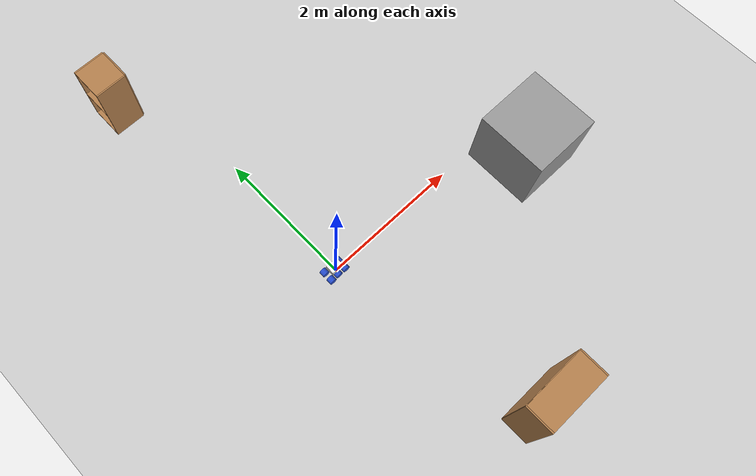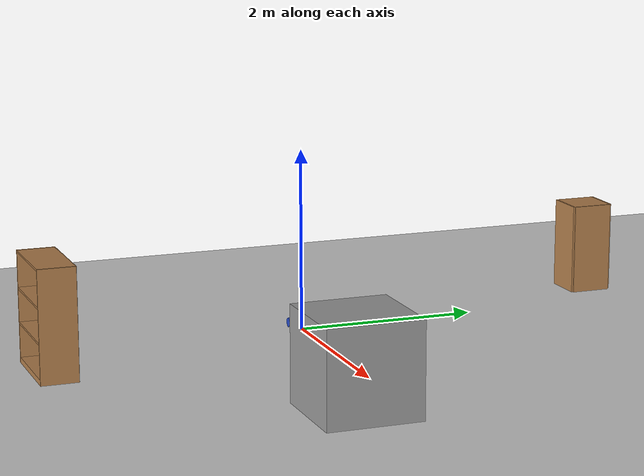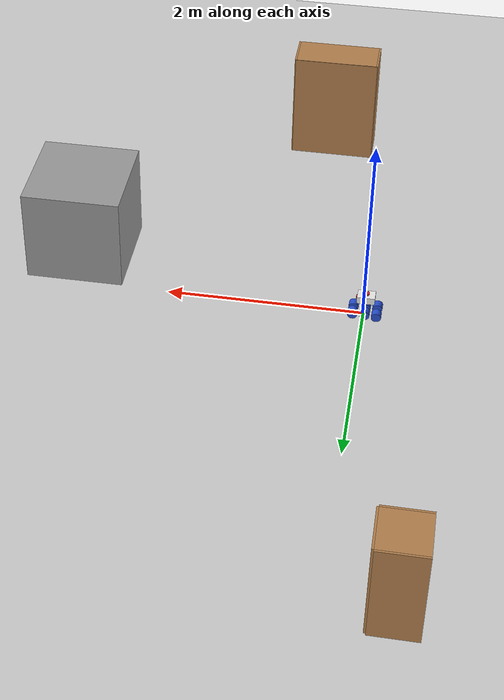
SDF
<sdf version="1.7">
 <world name="default">
  <light name="sun" type="directional">
   <pose>0 0 10 0 -0 0</pose>
   <diffuse>0.8 0.8 0.8 1</diffuse>
   <specular>0.2 0.2 0.2 1</specular>
   <attenuation>
    <range>1000</range>
    <constant>0.9</constant>
    <linear>0.01</linear>
    <quadratic>0.001</quadratic>
   </attenuation>
   <direction>-0.5 0.1 -0.9</direction>
   <spot><inner_angle>0</inner_angle><outer_angle>0</outer_angle><falloff>0</falloff></spot>
  </light>
  <model name="ground_plane">
   <static>1</static>
   <link name="link">
    <collision name="collision">
     <geometry><plane><normal>0 0 1</normal><size>100 100</size></plane></geometry>
     <surface>
      <contact><collide_bitmask>65535</collide_bitmask></contact>
      <friction><ode><mu>100</mu><mu2>50</mu2></ode></friction>
     </surface>
    </collision>
    <visual name="visual">
     <cast_shadows>0</cast_shadows>
     <geometry><plane><normal>0 0 1</normal><size>100 100</size></plane></geometry>
     <material>
      <script><uri>file://media/materials/scripts/gazebo.material</uri><name>Gazebo/Grey</name></script>
     </material>
    </visual>
   </link>
  </model>
  <gravity>0 0 -9.8</gravity>
  <magnetic_field>6e-06 2.3e-05 -4.2e-05</magnetic_field>
  <atmosphere type="adiabatic"/>
  <physics type="ode">
   <max_step_size>0.001</max_step_size>
   <real_time_factor>1</real_time_factor>
   <real_time_update_rate>1000</real_time_update_rate>
  </physics>
  <scene><ambient>0.4 0.4 0.4 1</ambient><background>0.7 0.7 0.7 1</background><shadows>1</shadows></scene>
  <audio><device>default</device></audio>
  <spherical_coordinates>
   <surface_model>EARTH_WGS84</surface_model>
   <latitude_deg>0</latitude_deg>
   <longitude_deg>0</longitude_deg>
   <elevation>0</elevation>
   <heading_deg>0</heading_deg>
  </spherical_coordinates>
  <model name="my_bot">
   <link name="base_link">
    <inertial>
     <pose>0 0 0.042985 0 -0 0</pose>
     <mass>0.78</mass>
     <inertia>
      <ixx>0.00139852</ixx>
      <ixy>0</ixy>
      <ixz>0</ixz>
      <iyy>0.00227997</iyy>
      <iyz>0</iyz>
      <izz>0.00274065</izz>
     </inertia>
    </inertial>
    <collision name="base_link_fixed_joint_lump__chassis_collision">
     <pose>0 0 0.0381 0 -0 0</pose>
     <geometry><box><size>0.178 0.127 0.0762</size></box></geometry>
    </collision>
    <collision name="base_link_fixed_joint_lump__laser_frame_collision_1">
     <pose>0 0 0.0762 0 -0 0</pose>
     <geometry><cylinder><length>0.04</length><radius>0.025</radius></cylinder></geometry>
    </collision>
    <visual name="base_link_fixed_joint_lump__chassis_visual">
     <pose>0 0 0.0381 0 -0 0</pose>
     <geometry><box><size>0.178 0.127 0.0762</size></box></geometry>
     <material>
      <script><name>Gazebo/White</name><uri>file://media/materials/scripts/gazebo.material</uri></script>
     </material>
    </visual>
    <visual name="base_link_fixed_joint_lump__camera_link_visual_1">
     <pose>0.095 0 0.035 0 -0 0</pose>
     <geometry><box><size>0.01 0.03 0.03</size></box></geometry>
     <material>
      <script><name>Gazebo/Red</name><uri>file://media/materials/scripts/gazebo.material</uri></script>
     </material>
    </visual>
    <visual name="base_link_fixed_joint_lump__laser_frame_visual_2">
     <pose>0 0 0.0762 0 -0 0</pose>
     <geometry><cylinder><length>0.04</length><radius>0.03</radius></cylinder></geometry>
     <material>
      <script><name>Gazebo/Red</name><uri>file://media/materials/scripts/gazebo.material</uri></script>
     </material>
    </visual>
    <sensor name="camera" type="camera">
     <visualize>1</visualize>
     <update_rate>10</update_rate>
     <camera>
      <horizontal_fov>1.74533</horizontal_fov>
      <image><format>R8G8B8</format><width>1920</width><height>1080</height></image>
      <clip><near>0.05</near><far>10</far></clip>
     </camera>
     <plugin name="camera_controller" filename="libgazebo_ros_camera.so">
      <frame_name>camera_link_optical</frame_name>
     </plugin>
     <pose>0.095 0 0.035 0 -0 0</pose>
    </sensor>
    <sensor name="laser" type="ray">
     <visualize>0</visualize>
     <update_rate>10</update_rate>
     <ray>
      <scan>
       <horizontal>
        <samples>360</samples>
        <min_angle>-3.14</min_angle>
        <max_angle>3.14</max_angle>
        <resolution>1</resolution>
       </horizontal>
       <vertical><samples>1</samples><min_angle>0</min_angle><max_angle>0</max_angle></vertical>
      </scan>
      <range><min>0.3</min><max>12</max></range>
     </ray>
     <plugin name="laser_controller" filename="libgazebo_ros_ray_sensor.so">
      <ros><argument>~/out:=scan</argument></ros>
      <output_type>sensor_msgs/LaserScan</output_type>
      <frame_name>laser_frame</frame_name>
     </plugin>
     <pose>0 0 0.0762 0 -0 0</pose>
    </sensor>
   </link>
   <joint name="left_back_wheel_joint" type="revolute">
    <pose relative_to="base_link">-0.118 0.03 -0.125 -1.5708 0 0</pose>
    <parent>base_link</parent>
    <child>left_back_wheel</child>
    <axis>
     <xyz>0 0 1</xyz>
     <limit><lower>-1e+16</lower><upper>1e+16</upper></limit>
     <dynamics><spring_reference>0</spring_reference><spring_stiffness>0</spring_stiffness></dynamics>
    </axis>
   </joint>
   <link name="left_back_wheel">
    <pose relative_to="left_back_wheel_joint">0 0 0 0 -0 0</pose>
    <inertial>
     <mass>0.1</mass>
     <inertia>
      <ixx>0.000115833</ixx>
      <ixy>0</ixy>
      <ixz>0</ixz>
      <iyy>0.000115833</iyy>
      <iyz>0</iyz>
      <izz>0.000125</izz>
     </inertia>
    </inertial>
    <collision name="left_back_wheel_collision">
     <pose>0 0 0.0381 0 -0 0</pose>
     <geometry><cylinder><length>0.08</length><radius>0.05</radius></cylinder></geometry>
    </collision>
    <visual name="left_back_wheel_visual">
     <pose>0 0 0.0381 0 -0 0</pose>
     <geometry><cylinder><length>0.08</length><radius>0.05</radius></cylinder></geometry>
     <material>
      <script><name>Gazebo/Blue</name><uri>file://media/materials/scripts/gazebo.material</uri></script>
     </material>
    </visual>
   </link>
   <joint name="left_front_wheel_joint" type="revolute">
    <pose relative_to="base_link">0.122 0.02 -0.125 -1.5708 0 0</pose>
    <parent>base_link</parent>
    <child>left_front_wheel</child>
    <axis>
     <xyz>0 0 1</xyz>
     <limit><lower>-1e+16</lower><upper>1e+16</upper></limit>
     <dynamics><spring_reference>0</spring_reference><spring_stiffness>0</spring_stiffness></dynamics>
    </axis>
   </joint>
   <link name="left_front_wheel">
    <pose relative_to="left_front_wheel_joint">0 0 0 0 -0 0</pose>
    <inertial>
     <mass>0.1</mass>
     <inertia>
      <ixx>0.000115833</ixx>
      <ixy>0</ixy>
      <ixz>0</ixz>
      <iyy>0.000115833</iyy>
      <iyz>0</iyz>
      <izz>0.000125</izz>
     </inertia>
    </inertial>
    <collision name="left_front_wheel_collision">
     <pose>0 0 0.0381 0 -0 0</pose>
     <geometry><cylinder><length>0.08</length><radius>0.05</radius></cylinder></geometry>
    </collision>
    <visual name="left_front_wheel_visual">
     <pose>0 0 0.0381 0 -0 0</pose>
     <geometry><cylinder><length>0.08</length><radius>0.05</radius></cylinder></geometry>
     <material>
      <script><name>Gazebo/Blue</name><uri>file://media/materials/scripts/gazebo.material</uri></script>
     </material>
    </visual>
   </link>
   <joint name="left_middle_wheel_joint" type="revolute">
    <pose relative_to="base_link">0 0.02 -0.125 -1.5708 0 0</pose>
    <parent>base_link</parent>
    <child>left_middle_wheel</child>
    <axis>
     <xyz>0 0 1</xyz>
     <limit><lower>-1e+16</lower><upper>1e+16</upper></limit>
     <dynamics><spring_reference>0</spring_reference><spring_stiffness>0</spring_stiffness></dynamics>
    </axis>
   </joint>
   <link name="left_middle_wheel">
    <pose relative_to="left_middle_wheel_joint">0 0 0 0 -0 0</pose>
    <inertial>
     <mass>0.1</mass>
     <inertia>
      <ixx>0.000115833</ixx>
      <ixy>0</ixy>
      <ixz>0</ixz>
      <iyy>0.000115833</iyy>
      <iyz>0</iyz>
      <izz>0.000125</izz>
     </inertia>
    </inertial>
    <collision name="left_middle_wheel_collision">
     <pose>0 0 0.0381 0 -0 0</pose>
     <geometry><cylinder><length>0.08</length><radius>0.05</radius></cylinder></geometry>
    </collision>
    <visual name="left_middle_wheel_visual">
     <pose>0 0 0.0381 0 -0 0</pose>
     <geometry><cylinder><length>0.08</length><radius>0.05</radius></cylinder></geometry>
     <material>
      <script><name>Gazebo/Blue</name><uri>file://media/materials/scripts/gazebo.material</uri></script>
     </material>
    </visual>
   </link>
   <joint name="right_back_wheel_joint" type="revolute">
    <pose relative_to="base_link">-0.118 -0.03 -0.125 1.5708 -0 0</pose>
    <parent>base_link</parent>
    <child>right_back_wheel</child>
    <axis>
     <xyz>0 0 -1</xyz>
     <limit><lower>-1e+16</lower><upper>1e+16</upper></limit>
     <dynamics><spring_reference>0</spring_reference><spring_stiffness>0</spring_stiffness></dynamics>
    </axis>
   </joint>
   <link name="right_back_wheel">
    <pose relative_to="right_back_wheel_joint">0 0 0 0 -0 0</pose>
    <inertial>
     <mass>0.1</mass>
     <inertia>
      <ixx>0.000115833</ixx>
      <ixy>0</ixy>
      <ixz>0</ixz>
      <iyy>0.000115833</iyy>
      <iyz>0</iyz>
      <izz>0.000125</izz>
     </inertia>
    </inertial>
    <collision name="right_back_wheel_collision">
     <pose>0 0 0.0381 0 -0 0</pose>
     <geometry><cylinder><length>0.08</length><radius>0.05</radius></cylinder></geometry>
    </collision>
    <visual name="right_back_wheel_visual">
     <pose>0 0 0.0381 0 -0 0</pose>
     <geometry><cylinder><length>0.08</length><radius>0.05</radius></cylinder></geometry>
     <material>
      <script><name>Gazebo/Blue</name><uri>file://media/materials/scripts/gazebo.material</uri></script>
     </material>
    </visual>
   </link>
   <joint name="right_front_wheel_joint" type="revolute">
    <pose relative_to="base_link">0.122 -0.02 -0.125 1.5708 -0 0</pose>
    <parent>base_link</parent>
    <child>right_front_wheel</child>
    <axis>
     <xyz>0 0 -1</xyz>
     <limit><lower>-1e+16</lower><upper>1e+16</upper></limit>
     <dynamics><spring_reference>0</spring_reference><spring_stiffness>0</spring_stiffness></dynamics>
    </axis>
   </joint>
   <link name="right_front_wheel">
    <pose relative_to="right_front_wheel_joint">0 0 0 0 -0 0</pose>
    <inertial>
     <mass>0.1</mass>
     <inertia>
      <ixx>0.000115833</ixx>
      <ixy>0</ixy>
      <ixz>0</ixz>
      <iyy>0.000115833</iyy>
      <iyz>0</iyz>
      <izz>0.000125</izz>
     </inertia>
    </inertial>
    <collision name="right_front_wheel_collision">
     <pose>0 0 0.0381 0 -0 0</pose>
     <geometry><cylinder><length>0.08</length><radius>0.05</radius></cylinder></geometry>
    </collision>
    <visual name="right_front_wheel_visual">
     <pose>0 0 0.0381 0 -0 0</pose>
     <geometry><cylinder><length>0.08</length><radius>0.05</radius></cylinder></geometry>
     <material>
      <script><name>Gazebo/Blue</name><uri>file://media/materials/scripts/gazebo.material</uri></script>
     </material>
    </visual>
   </link>
   <joint name="right_middle_wheel_joint" type="revolute">
    <pose relative_to="base_link">0 -0.02 -0.125 1.5708 -0 0</pose>
    <parent>base_link</parent>
    <child>right_middle_wheel</child>
    <axis>
     <xyz>0 0 -1</xyz>
     <limit><lower>-1e+16</lower><upper>1e+16</upper></limit>
     <dynamics><spring_reference>0</spring_reference><spring_stiffness>0</spring_stiffness></dynamics>
    </axis>
   </joint>
   <link name="right_middle_wheel">
    <pose relative_to="right_middle_wheel_joint">0 0 0 0 -0 0</pose>
    <inertial>
     <mass>0.1</mass>
     <inertia>
      <ixx>0.000115833</ixx>
      <ixy>0</ixy>
      <ixz>0</ixz>
      <iyy>0.000115833</iyy>
      <iyz>0</iyz>
      <izz>0.000125</izz>
     </inertia>
    </inertial>
    <collision name="right_middle_wheel_collision">
     <pose>0 0 0.0381 0 -0 0</pose>
     <geometry><cylinder><length>0.08</length><radius>0.05</radius></cylinder></geometry>
    </collision>
    <visual name="right_middle_wheel_visual">
     <pose>0 0 0.0381 0 -0 0</pose>
     <geometry><cylinder><length>0.08</length><radius>0.05</radius></cylinder></geometry>
     <material>
      <script><name>Gazebo/Blue</name><uri>file://media/materials/scripts/gazebo.material</uri></script>
     </material>
    </visual>
   </link>
   <static>0</static>
   <plugin name="gazebo_ros2_control" filename="libgazebo_ros2_control.so">
    <parameters>/home/ekzerba/dev_ws/src/my_bot/config/my_controllers.yaml</parameters>
   </plugin>
   <pose>-0.020929 -0.001395 0.175 -1e-06 -1e-06 -0.011863</pose>
  </model>
  <model name="unit_box">
   <pose>2.99239 -0.525319 0.499995 -1e-05 -0 -0</pose>
   <link name="link">
    <inertial>
     <mass>1</mass>
     <inertia>
      <ixx>0.166667</ixx>
      <ixy>0</ixy>
      <ixz>0</ixz>
      <iyy>0.166667</iyy>
      <iyz>0</iyz>
      <izz>0.166667</izz>
     </inertia>
    </inertial>
    <collision name="collision"><geometry><box><size>1 1 1</size></box></geometry></collision>
    <visual name="visual">
     <geometry><box><size>1 1 1</size></box></geometry>
     <material>
      <script><name>Gazebo/Grey</name><uri>file://media/materials/scripts/gazebo.material</uri></script>
     </material>
    </visual>
   </link>
  </model>
  <model name="bookshelf">
   <static>1</static>
   <link name="link">
    <inertial><mass>1</mass></inertial>
    <collision name="back">
     <pose>0 0.005 0.6 0 -0 0</pose>
     <geometry><box><size>0.9 0.01 1.2</size></box></geometry>
    </collision>
    <visual name="visual1">
     <pose>0 0.005 0.6 0 -0 0</pose>
     <geometry><box><size>0.9 0.01 1.2</size></box></geometry>
     <material>
      <script><uri>file://media/materials/scripts/gazebo.material</uri><name>Gazebo/Wood</name></script>
     </material>
    </visual>
    <collision name="left_side">
     <pose>0.45 -0.195 0.6 0 -0 0</pose>
     <geometry><box><size>0.02 0.4 1.2</size></box></geometry>
    </collision>
    <visual name="visual2">
     <pose>0.45 -0.195 0.6 0 -0 0</pose>
     <geometry><box><size>0.02 0.4 1.2</size></box></geometry>
     <material>
      <script><uri>file://media/materials/scripts/gazebo.material</uri><name>Gazebo/Wood</name></script>
     </material>
    </visual>
    <collision name="right_side">
     <pose>-0.45 -0.195 0.6 0 -0 0</pose>
     <geometry><box><size>0.02 0.4 1.2</size></box></geometry>
    </collision>
    <visual name="visual3">
     <pose>-0.45 -0.195 0.6 0 -0 0</pose>
     <geometry><box><size>0.02 0.4 1.2</size></box></geometry>
     <material>
      <script><uri>file://media/materials/scripts/gazebo.material</uri><name>Gazebo/Wood</name></script>
     </material>
    </visual>
    <collision name="bottom">
     <pose>0 -0.195 0.03 0 -0 0</pose>
     <geometry><box><size>0.88 0.4 0.06</size></box></geometry>
    </collision>
    <visual name="visual4">
     <pose>0 -0.195 0.03 0 -0 0</pose>
     <geometry><box><size>0.88 0.4 0.06</size></box></geometry>
     <material>
      <script><uri>file://media/materials/scripts/gazebo.material</uri><name>Gazebo/Wood</name></script>
     </material>
    </visual>
    <collision name="top">
     <pose>0 -0.195 1.19 0 -0 0</pose>
     <geometry><box><size>0.88 0.4 0.02</size></box></geometry>
    </collision>
    <visual name="visual5">
     <pose>0 -0.195 1.19 0 -0 0</pose>
     <geometry><box><size>0.88 0.4 0.02</size></box></geometry>
     <material>
      <script><uri>file://media/materials/scripts/gazebo.material</uri><name>Gazebo/Wood</name></script>
     </material>
    </visual>
    <collision name="low_shelf">
     <pose>0 -0.195 0.43 0 -0 0</pose>
     <geometry><box><size>0.88 0.4 0.02</size></box></geometry>
    </collision>
    <visual name="visual6">
     <pose>0 -0.195 0.43 0 -0 0</pose>
     <geometry><box><size>0.88 0.4 0.02</size></box></geometry>
     <material>
      <script><uri>file://media/materials/scripts/gazebo.material</uri><name>Gazebo/Wood</name></script>
     </material>
    </visual>
    <collision name="high_shelf">
     <pose>0 -0.195 0.8 0 -0 0</pose>
     <geometry><box><size>0.88 0.4 0.02</size></box></geometry>
    </collision>
    <visual name="visual7">
     <pose>0 -0.195 0.8 0 -0 0</pose>
     <geometry><box><size>0.88 0.4 0.02</size></box></geometry>
     <material>
      <script><uri>file://media/materials/scripts/gazebo.material</uri><name>Gazebo/Wood</name></script>
     </material>
    </visual>
   </link>
   <pose>0.634291 -2.77782 0 0 -0 0</pose>
  </model>
  <model name="cabinet">
   <static>1</static>
   <link name="cabinet_bottom_plate">
    <inertial>
     <pose>0 0 -1 0 -0 0</pose>
     <inertia><ixx>2.05</ixx><ixy>0</ixy><ixz>0</ixz><iyy>2.05</iyy><iyz>0</iyz><izz>2.05</izz></inertia>
     <mass>25</mass>
    </inertial>
    <collision name="cabinet_bottom_plate_geom">
     <pose>0 0 0.01 0 -0 0</pose>
     <geometry><box><size>0.45 0.45 0.02</size></box></geometry>
    </collision>
    <visual name="cabinet_bottom_plate_geom_visual">
     <pose>0 0 0.01 0 -0 0</pose>
     <geometry><box><size>0.45 0.45 0.02</size></box></geometry>
     <material>
      <script><uri>file://media/materials/scripts/gazebo.material</uri><name>Gazebo/Wood</name></script>
     </material>
    </visual>
    <collision name="cabinet_bottom_plate_geom_cabinet_back_plate">
     <pose>0.235 0 0.51 0 -0 0</pose>
     <geometry><box><size>0.02 0.45 1.02</size></box></geometry>
    </collision>
    <visual name="cabinet_bottom_plate_geom_cabinet_back_plate_visual">
     <pose>0.235 0 0.51 0 -0 0</pose>
     <geometry><box><size>0.02 0.45 1.02</size></box></geometry>
     <material>
      <script><uri>file://media/materials/scripts/gazebo.material</uri><name>Gazebo/Wood</name></script>
     </material>
    </visual>
    <collision name="cabinet_bottom_plate_geom_cabinet_left_plate">
     <pose>0 0.235 0.51 0 -0 0</pose>
     <geometry><box><size>0.45 0.02 1.02</size></box></geometry>
    </collision>
    <visual name="cabinet_bottom_plate_geom_cabinet_left_plate_visual">
     <pose>0 0.235 0.51 0 -0 0</pose>
     <geometry><box><size>0.45 0.02 1.02</size></box></geometry>
     <material>
      <script><uri>file://media/materials/scripts/gazebo.material</uri><name>Gazebo/Wood</name></script>
     </material>
    </visual>
    <collision name="cabinet_bottom_plate_geom_cabinet_middle_plate">
     <pose>0 0 0.51 0 -0 0</pose>
     <geometry><box><size>0.45 0.45 0.02</size></box></geometry>
    </collision>
    <visual name="cabinet_bottom_plate_geom_cabinet_middle_plate_visual">
     <pose>0 0 0.51 0 -0 0</pose>
     <geometry><box><size>0.45 0.45 0.02</size></box></geometry>
     <material>
      <script><uri>file://media/materials/scripts/gazebo.material</uri><name>Gazebo/Wood</name></script>
     </material>
    </visual>
    <collision name="cabinet_bottom_plate_geom_cabinet_right_plate">
     <pose>0 -0.235 0.51 0 -0 0</pose>
     <geometry><box><size>0.45 0.02 1.02</size></box></geometry>
    </collision>
    <visual name="cabinet_bottom_plate_geom_cabinet_right_plate_visual">
     <pose>0 -0.235 0.51 0 -0 0</pose>
     <geometry><box><size>0.45 0.02 1.02</size></box></geometry>
     <material>
      <script><uri>file://media/materials/scripts/gazebo.material</uri><name>Gazebo/Wood</name></script>
     </material>
    </visual>
    <collision name="cabinet_bottom_plate_geom_cabinet_top_plate">
     <pose>0 0 1.01 0 -0 0</pose>
     <geometry><box><size>0.45 0.45 0.02</size></box></geometry>
    </collision>
    <visual name="cabinet_bottom_plate_geom_cabinet_top_plate_visual">
     <pose>0 0 1.01 0 -0 0</pose>
     <geometry><box><size>0.45 0.45 0.02</size></box></geometry>
     <material>
      <script><uri>file://media/materials/scripts/gazebo.material</uri><name>Gazebo/Wood</name></script>
     </material>
    </visual>
   </link>
   <pose>-0.631785 3.76293 0 0 -0 0</pose>
  </model>
 </world>
</sdf>
